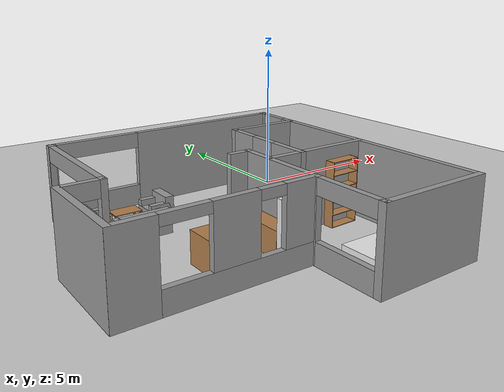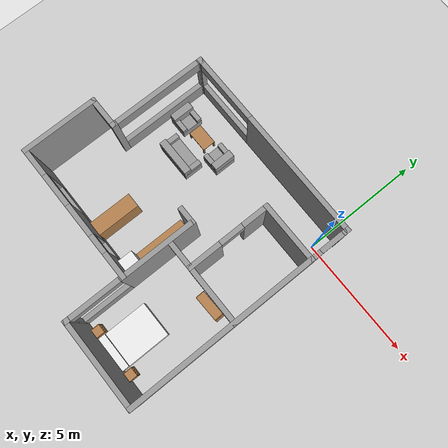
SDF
<sdf version="1.6">
 <world name="GrannyAnnie">
  <light name="sun" type="directional">
   <pose>0 0 10 0 -0 0</pose>
   <diffuse>0.8 0.8 0.8 1</diffuse>
   <specular>0.2 0.2 0.2 1</specular>
   <attenuation>
    <range>1000</range>
    <constant>0.9</constant>
    <linear>0.01</linear>
    <quadratic>0.001</quadratic>
   </attenuation>
   <direction>-0.5 0.1 -0.9</direction>
  </light>
  <model name="ground_plane">
   <static>1</static>
   <link name="link">
    <collision name="collision">
     <geometry><plane><normal>0 0 1</normal><size>100 100</size></plane></geometry>
     <surface><friction><ode><mu>100</mu><mu2>100</mu2></ode></friction></surface>
    </collision>
    <visual name="visual">
     <cast_shadows>0</cast_shadows>
     <geometry><plane><normal>0 0 1</normal><size>100 100</size></plane></geometry>
     <material>
      <script><uri>file://media/materials/scripts/gazebo.material</uri><name>Gazebo/Grey</name></script>
     </material>
    </visual>
    <velocity_decay><linear>0</linear><angular>0</angular></velocity_decay>
   </link>
  </model>
  <physics name="default_physics" default="0" type="ode">
   <max_step_size>0.01</max_step_size>
   <real_time_factor>1</real_time_factor>
   <real_time_update_rate>100</real_time_update_rate>
  </physics>
  <scene><ambient>0.4 0.4 0.4 1</ambient><background>0.7 0.7 0.7 1</background><shadows>1</shadows></scene>
  <model name="RoCKIn@Home">
   <link name="Wall_12">
    <collision name="Wall_12_Collision">
     <geometry><box><size>2.6 0.2 2.5</size></box></geometry>
     <pose>0 0 1.25 0 -0 0</pose>
    </collision>
    <visual name="Wall_12_Visual">
     <pose>0 0 1.25 0 -0 0</pose>
     <geometry><box><size>2.6 0.2 2.5</size></box></geometry>
     <material>
      <script><uri>file://media/materials/scripts/gazebo.material</uri><name>Gazebo/Grey</name></script>
     </material>
    </visual>
    <velocity_decay><linear>0</linear><angular>0</angular></velocity_decay>
    <pose>7.8 1.205 0 0 -0 1.5708</pose>
   </link>
   <link name="Wall_14">
    <pose>6.0996 2.4048 0 0 -0 3.14159</pose>
    <visual name="Wall_14_Visual_0">
     <pose>-1.20789 0 1.25 0 -0 0</pose>
     <geometry><box><size>1.18422 0.2 2.5</size></box></geometry>
     <material>
      <script><uri>file://media/materials/scripts/gazebo.material</uri><name>Gazebo/Grey</name></script>
     </material>
    </visual>
    <collision name="Wall_14_Collision_0">
     <geometry><box><size>1.18422 0.2 2.5</size></box></geometry>
     <pose>-1.20789 0 1.25 0 -0 0</pose>
    </collision>
    <visual name="Wall_14_Visual_1">
     <pose>1.09211 0 1.25 0 -0 0</pose>
     <geometry><box><size>1.41579 0.2 2.5</size></box></geometry>
     <material>
      <script><uri>file://media/materials/scripts/gazebo.material</uri><name>Gazebo/Grey</name></script>
     </material>
    </visual>
    <collision name="Wall_14_Collision_1">
     <geometry><box><size>1.41579 0.2 2.5</size></box></geometry>
     <pose>1.09211 0 1.25 0 -0 0</pose>
    </collision>
    <visual name="Wall_14_Visual_2">
     <pose>-0.115785 0 2.25 0 -0 0</pose>
     <geometry><box><size>1 0.2 0.5</size></box></geometry>
     <material>
      <script><uri>file://media/materials/scripts/gazebo.material</uri><name>Gazebo/Grey</name></script>
     </material>
    </visual>
    <collision name="Wall_14_Collision_2">
     <geometry><box><size>1 0.2 0.5</size></box></geometry>
     <pose>-0.115785 0 2.25 0 -0 0</pose>
    </collision>
    <velocity_decay><linear>0</linear><angular>0</angular></velocity_decay>
   </link>
   <link name="Wall_16">
    <collision name="Wall_16_Collision">
     <geometry><box><size>2.60492 0.2 2.5</size></box></geometry>
     <pose>0 0 1.25 0 -0 0</pose>
    </collision>
    <visual name="Wall_16_Visual">
     <pose>0 0 1.25 0 -0 0</pose>
     <geometry><box><size>2.60492 0.2 2.5</size></box></geometry>
     <material>
      <script><uri>file://media/materials/scripts/gazebo.material</uri><name>Gazebo/Grey</name></script>
     </material>
    </visual>
    <velocity_decay><linear>0</linear><angular>0</angular></velocity_decay>
    <pose>4.39903 1.20277 0 0 -0 1.5708</pose>
   </link>
   <link name="Wall_18">
    <collision name="Wall_18_Collision">
     <geometry><box><size>3.8 0.2 2.5</size></box></geometry>
     <pose>0 0 1.25 0 -0 0</pose>
    </collision>
    <visual name="Wall_18_Visual">
     <pose>0 0 1.25 0 -0 0</pose>
     <geometry><box><size>3.8 0.2 2.5</size></box></geometry>
     <material>
      <script><uri>file://media/materials/scripts/gazebo.material</uri><name>Gazebo/Grey</name></script>
     </material>
    </visual>
    <velocity_decay><linear>0</linear><angular>0</angular></velocity_decay>
    <pose>0.024876 1.80003 0 0 -0 1.5708</pose>
   </link>
   <link name="Wall_2">
    <pose>4.7266 0 0 0 -0 0</pose>
    <visual name="Wall_2_Visual_0">
     <pose>-0.649274 0 1.25 0 -0 0</pose>
     <geometry><box><size>8.30145 0.2 2.5</size></box></geometry>
     <material>
      <script><uri>file://media/materials/scripts/gazebo.material</uri><name>Gazebo/Grey</name></script>
     </material>
    </visual>
    <collision name="Wall_2_Collision_0">
     <geometry><box><size>8.30145 0.2 2.5</size></box></geometry>
     <pose>-0.649274 0 1.25 0 -0 0</pose>
    </collision>
    <visual name="Wall_2_Visual_1">
     <pose>4.65073 0 1.25 0 -0 0</pose>
     <geometry><box><size>0.298547 0.2 2.5</size></box></geometry>
     <material>
      <script><uri>file://media/materials/scripts/gazebo.material</uri><name>Gazebo/Grey</name></script>
     </material>
    </visual>
    <collision name="Wall_2_Collision_1">
     <geometry><box><size>0.298547 0.2 2.5</size></box></geometry>
     <pose>4.65073 0 1.25 0 -0 0</pose>
    </collision>
    <visual name="Wall_2_Visual_2">
     <pose>4.00145 0 2.25 0 -0 0</pose>
     <geometry><box><size>1 0.2 0.5</size></box></geometry>
     <material>
      <script><uri>file://media/materials/scripts/gazebo.material</uri><name>Gazebo/Grey</name></script>
     </material>
    </visual>
    <collision name="Wall_2_Collision_2">
     <geometry><box><size>1 0.2 0.5</size></box></geometry>
     <pose>4.00145 0 2.25 0 -0 0</pose>
    </collision>
    <velocity_decay><linear>0</linear><angular>0</angular></velocity_decay>
   </link>
   <link name="Wall_20">
    <pose>2.72456 3.60059 0 0 -0 0</pose>
    <visual name="Wall_20_Visual_0">
     <pose>-2.67396 0 1.25 0 -0 0</pose>
     <geometry><box><size>0.251208 0.2 2.5</size></box></geometry>
     <material>
      <script><uri>file://media/materials/scripts/gazebo.material</uri><name>Gazebo/Grey</name></script>
     </material>
    </visual>
    <collision name="Wall_20_Collision_0">
     <geometry><box><size>0.251208 0.2 2.5</size></box></geometry>
     <pose>-2.67396 0 1.25 0 -0 0</pose>
    </collision>
    <visual name="Wall_20_Visual_1">
     <pose>1.1766 0 1.25 0 -0 0</pose>
     <geometry><box><size>3.24591 0.2 2.5</size></box></geometry>
     <material>
      <script><uri>file://media/materials/scripts/gazebo.material</uri><name>Gazebo/Grey</name></script>
     </material>
    </visual>
    <collision name="Wall_20_Collision_1">
     <geometry><box><size>3.24591 0.2 2.5</size></box></geometry>
     <pose>1.1766 0 1.25 0 -0 0</pose>
    </collision>
    <visual name="Wall_20_Visual_2">
     <pose>-1.49735 0 2.25 0 -0 0</pose>
     <geometry><box><size>2.102 0.2 0.5</size></box></geometry>
     <material>
      <script><uri>file://media/materials/scripts/gazebo.material</uri><name>Gazebo/Grey</name></script>
     </material>
    </visual>
    <collision name="Wall_20_Collision_2">
     <geometry><box><size>2.102 0.2 0.5</size></box></geometry>
     <pose>-1.49735 0 2.25 0 -0 0</pose>
    </collision>
    <visual name="Wall_20_Visual_3">
     <pose>-1.49735 0 0.35 0 -0 0</pose>
     <geometry><box><size>2.102 0.2 0.7</size></box></geometry>
     <material>
      <script><uri>file://media/materials/scripts/gazebo.material</uri><name>Gazebo/Grey</name></script>
     </material>
    </visual>
    <collision name="Wall_20_Collision_3">
     <geometry><box><size>2.102 0.2 0.3</size></box></geometry>
     <pose>-1.49735 0 0.35 0 -0 0</pose>
    </collision>
    <velocity_decay><linear>0</linear><angular>0</angular></velocity_decay>
   </link>
   <link name="Wall_22">
    <pose>4.39856 3.00206 0 0 -0 1.5708</pose>
    <visual name="Wall_22_Visual_0">
     <pose>-0.601085 0 1.25 0 -0 0</pose>
     <geometry><box><size>0.194709 0.2 2.5</size></box></geometry>
     <material>
      <script><uri>file://media/materials/scripts/gazebo.material</uri><name>Gazebo/Grey</name></script>
     </material>
    </visual>
    <collision name="Wall_22_Collision_0">
     <geometry><box><size>0.194709 0.2 2.5</size></box></geometry>
     <pose>-0.601085 0 1.25 0 -0 0</pose>
    </collision>
    <visual name="Wall_22_Visual_1">
     <pose>0.597355 0 1.25 0 -0 0</pose>
     <geometry><box><size>0.202171 0.2 2.5</size></box></geometry>
     <material>
      <script><uri>file://media/materials/scripts/gazebo.material</uri><name>Gazebo/Grey</name></script>
     </material>
    </visual>
    <collision name="Wall_22_Collision_1">
     <geometry><box><size>0.202171 0.2 2.5</size></box></geometry>
     <pose>0.597355 0 1.25 0 -0 0</pose>
    </collision>
    <visual name="Wall_22_Visual_2">
     <pose>-0.003731 0 2.25 0 -0 0</pose>
     <geometry><box><size>1 0.2 0.5</size></box></geometry>
     <material>
      <script><uri>file://media/materials/scripts/gazebo.material</uri><name>Gazebo/Grey</name></script>
     </material>
    </visual>
    <collision name="Wall_22_Collision_2">
     <geometry><box><size>1 0.2 0.5</size></box></geometry>
     <pose>-0.003731 0 2.25 0 -0 0</pose>
    </collision>
    <velocity_decay><linear>0</linear><angular>0</angular></velocity_decay>
   </link>
   <link name="Wall_24">
    <pose>7.42703 8.20242 0 0 -0 3.14159</pose>
    <visual name="Wall_24_Visual_0">
     <pose>-1.97924 0 1.25 0 -0 0</pose>
     <geometry><box><size>0.241529 0.2 2.5</size></box></geometry>
     <material>
      <script><uri>file://media/materials/scripts/gazebo.material</uri><name>Gazebo/Grey</name></script>
     </material>
    </visual>
    <collision name="Wall_24_Collision_0">
     <geometry><box><size>0.241529 0.2 2.5</size></box></geometry>
     <pose>-1.97924 0 1.25 0 -0 0</pose>
    </collision>
    <visual name="Wall_24_Visual_1">
     <pose>1.97395 0 1.25 0 -0 0</pose>
     <geometry><box><size>0.252091 0.2 2.5</size></box></geometry>
     <material>
      <script><uri>file://media/materials/scripts/gazebo.material</uri><name>Gazebo/Grey</name></script>
     </material>
    </visual>
    <collision name="Wall_24_Collision_1">
     <geometry><box><size>0.252091 0.2 2.5</size></box></geometry>
     <pose>1.97395 0 1.25 0 -0 0</pose>
    </collision>
    <visual name="Wall_24_Visual_2">
     <pose>-0.005281 0 2.25 0 -0 0</pose>
     <geometry><box><size>3.70638 0.2 0.5</size></box></geometry>
     <material>
      <script><uri>file://media/materials/scripts/gazebo.material</uri><name>Gazebo/Grey</name></script>
     </material>
    </visual>
    <collision name="Wall_24_Collision_2">
     <geometry><box><size>3.70638 0.2 0.5</size></box></geometry>
     <pose>-0.005281 0 2.25 0 -0 0</pose>
    </collision>
    <visual name="Wall_24_Visual_3">
     <pose>-0.005281 0 0.35 0 -0 0</pose>
     <geometry><box><size>3.70638 0.2 0.7</size></box></geometry>
     <material>
      <script><uri>file://media/materials/scripts/gazebo.material</uri><name>Gazebo/Grey</name></script>
     </material>
    </visual>
    <collision name="Wall_24_Collision_3">
     <geometry><box><size>3.70638 0.2 0.7</size></box></geometry>
     <pose>-0.005281 0 0.35 0 -0 0</pose>
    </collision>
    <velocity_decay><linear>0</linear><angular>0</angular></velocity_decay>
   </link>
   <link name="Wall_28">
    <collision name="Wall_28_Collision">
     <geometry><box><size>3.2 0.2 2.5</size></box></geometry>
     <pose>0 0 1.25 0 -0 0</pose>
    </collision>
    <visual name="Wall_28_Visual">
     <pose>0 0 1.25 0 -0 0</pose>
     <geometry><box><size>3.2 0.2 2.5</size></box></geometry>
     <material>
      <script><uri>file://media/materials/scripts/gazebo.material</uri><name>Gazebo/Grey</name></script>
     </material>
    </visual>
    <velocity_decay><linear>0</linear><angular>0</angular></velocity_decay>
    <pose>3.92571 9.40229 0 0 -0 3.14159</pose>
   </link>
   <link name="Wall_30">
    <pose>2.42541 6.50159 0 0 0 -1.5708</pose>
    <visual name="Wall_30_Visual_0">
     <pose>-2.363 0 1.25 0 -0 0</pose>
     <geometry><box><size>1.27269 0.2 2.5</size></box></geometry>
     <material>
      <script><uri>file://media/materials/scripts/gazebo.material</uri><name>Gazebo/Grey</name></script>
     </material>
    </visual>
    <collision name="Wall_30_Collision_0">
     <geometry><box><size>1.27269 0.2 2.5</size></box></geometry>
     <pose>-2.363 0 1.25 0 -0 0</pose>
    </collision>
    <visual name="Wall_30_Visual_1">
     <pose>0.636346 0 0.35 0 -0 0</pose>
     <geometry><box><size>4.726 0.2 0.7</size></box></geometry>
     <material>
      <script><uri>file://media/materials/scripts/gazebo.material</uri><name>Gazebo/Grey</name></script>
     </material>
    </visual>
    <collision name="Wall_30_Collision_1">
     <geometry><box><size>4.726 0.2 0.7</size></box></geometry>
     <pose>0.636346 0 0.35 0 -0 0</pose>
    </collision>
    <visual name="Wall_30_Visual_2">
     <pose>0.36359 0 1.6 0 -0 0</pose>
     <geometry><box><size>1.38049 0.2 1.8</size></box></geometry>
     <material>
      <script><uri>file://media/materials/scripts/gazebo.material</uri><name>Gazebo/Grey</name></script>
     </material>
    </visual>
    <collision name="Wall_30_Collision_2">
     <geometry><box><size>1.38049 0.2 1.8</size></box></geometry>
     <pose>0.36359 0 1.6 0 -0 0</pose>
    </collision>
    <visual name="Wall_30_Visual_3">
     <pose>2.42659 0 1.6 0 -0 0</pose>
     <geometry><box><size>1.14551 0.2 1.8</size></box></geometry>
     <material>
      <script><uri>file://media/materials/scripts/gazebo.material</uri><name>Gazebo/Grey</name></script>
     </material>
    </visual>
    <collision name="Wall_30_Collision_3">
     <geometry><box><size>1.14551 0.2 1.8</size></box></geometry>
     <pose>2.42659 0 1.6 0 -0 0</pose>
    </collision>
    <visual name="Wall_30_Visual_4">
     <pose>-1.02665 0 2.35 0 -0 0</pose>
     <geometry><box><size>1.4 0.2 0.3</size></box></geometry>
     <material>
      <script><uri>file://media/materials/scripts/gazebo.material</uri><name>Gazebo/Grey</name></script>
     </material>
    </visual>
    <collision name="Wall_30_Collision_4">
     <geometry><box><size>1.4 0.2 0.3</size></box></geometry>
     <pose>-1.02665 0 2.35 0 -0 0</pose>
    </collision>
    <visual name="Wall_30_Visual_5">
     <pose>1.45383 0 2.35 0 -0 0</pose>
     <geometry><box><size>0.8 0.2 0.3</size></box></geometry>
     <material>
      <script><uri>file://media/materials/scripts/gazebo.material</uri><name>Gazebo/Grey</name></script>
     </material>
    </visual>
    <collision name="Wall_30_Collision_5">
     <geometry><box><size>0.8 0.2 0.3</size></box></geometry>
     <pose>1.45383 0 2.35 0 -0 0</pose>
    </collision>
    <velocity_decay><linear>0</linear><angular>0</angular></velocity_decay>
   </link>
   <link name="Wall_32">
    <pose>5.42654 8.80216 0 0 0 -1.5708</pose>
    <visual name="Wall_32_Visual_0">
     <pose>-0.599775 0 1.25 0 -0 0</pose>
     <geometry><box><size>0.199231 0.2 2.5</size></box></geometry>
     <material>
      <script><uri>file://media/materials/scripts/gazebo.material</uri><name>Gazebo/Grey</name></script>
     </material>
    </visual>
    <collision name="Wall_32_Collision_0">
     <geometry><box><size>0.199231 0.2 2.5</size></box></geometry>
     <pose>-0.599775 0 1.25 0 -0 0</pose>
    </collision>
    <visual name="Wall_32_Visual_1">
     <pose>0.599615 0 1.25 0 -0 0</pose>
     <geometry><box><size>0.199549 0.2 2.5</size></box></geometry>
     <material>
      <script><uri>file://media/materials/scripts/gazebo.material</uri><name>Gazebo/Grey</name></script>
     </material>
    </visual>
    <collision name="Wall_32_Collision_1">
     <geometry><box><size>0.199549 0.2 2.5</size></box></geometry>
     <pose>0.599615 0 1.25 0 -0 0</pose>
    </collision>
    <visual name="Wall_32_Visual_2">
     <pose>-0.000159 0 2.25 0 -0 0</pose>
     <geometry><box><size>1 0.2 0.5</size></box></geometry>
     <material>
      <script><uri>file://media/materials/scripts/gazebo.material</uri><name>Gazebo/Grey</name></script>
     </material>
    </visual>
    <collision name="Wall_32_Collision_2">
     <geometry><box><size>1 0.2 0.5</size></box></geometry>
     <pose>-0.000159 0 2.25 0 -0 0</pose>
    </collision>
    <velocity_decay><linear>0</linear><angular>0</angular></velocity_decay>
   </link>
   <link name="Wall_35">
    <collision name="Wall_35_Collision">
     <geometry><box><size>0.8 0.2 2.5</size></box></geometry>
     <pose>0 0 1.25 0 -0 0</pose>
    </collision>
    <visual name="Wall_35_Visual">
     <pose>0 0 1.25 0 -0 0</pose>
     <geometry><box><size>0.8 0.2 2.5</size></box></geometry>
     <material>
      <script><uri>file://media/materials/scripts/gazebo.material</uri><name>Gazebo/Grey</name></script>
     </material>
    </visual>
    <velocity_decay><linear>0</linear><angular>0</angular></velocity_decay>
    <pose>5.42451 3.90082 0 0 -0 1.5708</pose>
   </link>
   <link name="Wall_8">
    <pose>9.42875 4.1026 0 0 -0 1.5708</pose>
    <visual name="Wall_8_Visual_0">
     <pose>-1.48935 0 1.25 0 -0 0</pose>
     <geometry><box><size>5.42201 0.2 2.5</size></box></geometry>
     <material>
      <script><uri>file://media/materials/scripts/gazebo.material</uri><name>Gazebo/Grey</name></script>
     </material>
    </visual>
    <collision name="Wall_8_Collision_0">
     <geometry><box><size>5.42201 0.2 2.5</size></box></geometry>
     <pose>-1.48935 0 1.25 0 -0 0</pose>
    </collision>
    <visual name="Wall_8_Visual_1">
     <pose>4.07465 0 1.25 0 -0 0</pose>
     <geometry><box><size>0.251416 0.2 2.5</size></box></geometry>
     <material>
      <script><uri>file://media/materials/scripts/gazebo.material</uri><name>Gazebo/Grey</name></script>
     </material>
    </visual>
    <collision name="Wall_8_Collision_1">
     <geometry><box><size>0.251416 0.2 2.5</size></box></geometry>
     <pose>4.07465 0 1.25 0 -0 0</pose>
    </collision>
    <visual name="Wall_8_Visual_2">
     <pose>2.5853 0 2.25 0 -0 0</pose>
     <geometry><box><size>2.72728 0.2 0.5</size></box></geometry>
     <material>
      <script><uri>file://media/materials/scripts/gazebo.material</uri><name>Gazebo/Grey</name></script>
     </material>
    </visual>
    <collision name="Wall_8_Collision_2">
     <geometry><box><size>2.72728 0.2 0.5</size></box></geometry>
     <pose>2.5853 0 2.25 0 -0 0</pose>
    </collision>
    <visual name="Wall_8_Visual_3">
     <pose>2.5853 0 0.35 0 -0 0</pose>
     <geometry><box><size>2.72728 0.2 0.7</size></box></geometry>
     <material>
      <script><uri>file://media/materials/scripts/gazebo.material</uri><name>Gazebo/Grey</name></script>
     </material>
    </visual>
    <collision name="Wall_8_Collision_3">
     <geometry><box><size>2.72728 0.2 0.7</size></box></geometry>
     <pose>2.5853 0 0.35 0 -0 0</pose>
    </collision>
    <velocity_decay><linear>0</linear><angular>0</angular></velocity_decay>
   </link>
   <static>1</static>
   <pose>0.4 -8.6 0 0 -0 1.57</pose>
  </model>
  <model name="mesa_salon">
   <link name="mesa_link">
    <inertial>
     <pose>0 0 0.3075 0 -0 0</pose>
     <mass>4</mass>
     <inertia>
      <ixx>0.666275</ixx>
      <ixy>1.92593e-34</ixy>
      <ixz>1.70697e-17</ixz>
      <iyy>0.899025</iyy>
      <iyz>4.26742e-18</iyz>
      <izz>0.97285</izz>
     </inertia>
    </inertial>
    <collision name="mesa_link_collision">
     <pose>0 0 0.415 0 -0 0</pose>
     <geometry><box><size>0.9 0.55 0.03</size></box></geometry>
     <surface><friction><ode><mu>100</mu><mu2>100</mu2></ode></friction></surface>
    </collision>
    <collision name="mesa_link_collision_pata_1_link">
     <pose>0.42 0.245 0.2 0 -0 0</pose>
     <geometry><box><size>0.06 0.06 0.4</size></box></geometry>
     <surface><friction><ode><mu>100</mu><mu2>100</mu2></ode></friction></surface>
     <surface><friction><ode><mu>100</mu><mu2>100</mu2></ode></friction></surface>
    </collision>
    <collision name="mesa_link_collision_pata_2_link">
     <pose>0.42 -0.245 0.2 0 -0 0</pose>
     <geometry><box><size>0.06 0.06 0.4</size></box></geometry>
     <surface><friction><ode><mu>100</mu><mu2>100</mu2></ode></friction></surface>
     <surface><friction><ode><mu>100</mu><mu2>100</mu2></ode></friction></surface>
    </collision>
    <collision name="mesa_link_collision_pata_3_link">
     <pose>-0.42 -0.245 0.2 0 -0 0</pose>
     <geometry><box><size>0.06 0.06 0.4</size></box></geometry>
     <surface><friction><ode><mu>100</mu><mu2>100</mu2></ode></friction></surface>
     <surface><friction><ode><mu>100</mu><mu2>100</mu2></ode></friction></surface>
    </collision>
    <collision name="mesa_link_collision_pata_4_link">
     <pose>-0.42 0.245 0.2 0 -0 0</pose>
     <geometry><box><size>0.06 0.06 0.4</size></box></geometry>
     <surface><friction><ode><mu>100</mu><mu2>100</mu2></ode></friction></surface>
     <surface><friction><ode><mu>100</mu><mu2>100</mu2></ode></friction></surface>
    </collision>
    <visual name="mesa_link_visual">
     <pose>0 0 0.415 0 -0 0</pose>
     <geometry><box><size>0.9 0.55 0.03</size></box></geometry>
     <material><script><name>Gazebo/Wood</name><uri>__default__</uri></script></material>
    </visual>
    <visual name="mesa_link_visual_pata_1_link">
     <pose>0.42 0.245 0.2 0 -0 0</pose>
     <geometry><box><size>0.06 0.06 0.4</size></box></geometry>
     <material><script><name>Gazebo/Wood</name><uri>__default__</uri></script></material>
    </visual>
    <visual name="mesa_link_visual_pata_2_link">
     <pose>0.42 -0.245 0.2 0 -0 0</pose>
     <geometry><box><size>0.06 0.06 0.4</size></box></geometry>
     <material><script><name>Gazebo/Wood</name><uri>__default__</uri></script></material>
    </visual>
    <visual name="mesa_link_visual_pata_3_link">
     <pose>-0.42 -0.245 0.2 0 -0 0</pose>
     <geometry><box><size>0.06 0.06 0.4</size></box></geometry>
     <material><script><name>Gazebo/Wood</name><uri>__default__</uri></script></material>
    </visual>
    <visual name="mesa_link_visual_pata_4_link">
     <pose>-0.42 0.245 0.2 0 -0 0</pose>
     <geometry><box><size>0.06 0.06 0.4</size></box></geometry>
     <material><script><name>Gazebo/Wood</name><uri>__default__</uri></script></material>
    </visual>
    <velocity_decay><linear>0</linear><angular>0</angular></velocity_decay>
    <velocity_decay><linear>0</linear><angular>0</angular></velocity_decay>
    <velocity_decay><linear>0</linear><angular>0</angular></velocity_decay>
    <velocity_decay><linear>0</linear><angular>0</angular></velocity_decay>
    <velocity_decay><linear>0</linear><angular>0</angular></velocity_decay>
    <self_collide>1</self_collide>
   </link>
   <pose>-6.08666 -0.599214 -0.000904 -4e-06 6.6e-05 0.002838</pose>
   <static>0</static>
  </model>
  <model name="sofa_x2_salon">
   <link name="sofa_link">
    <inertial>
     <pose>0 0.011539 0.257692 0 -0 0</pose>
     <mass>13</mass>
     <inertia>
      <ixx>0.7625</ixx>
      <ixy>0</ixy>
      <ixz>0</ixz>
      <iyy>1.67673</iyy>
      <iyz>-0.0463462</iyz>
      <izz>1.44577</izz>
     </inertia>
    </inertial>
    <collision name="sofa_link_collision">
     <pose>0 0 0.175 0 -0 0</pose>
     <geometry><box><size>1.6 0.8 0.35</size></box></geometry>
     <surface><friction><ode><mu>100</mu><mu2>100</mu2></ode></friction></surface>
    </collision>
    <collision name="sofa_link_collision_brazo_1_link">
     <pose>0.7 -0.05 0.45 0 -0 0</pose>
     <geometry><box><size>0.2 0.7 0.2</size></box></geometry>
     <surface><friction><ode><mu>100</mu><mu2>100</mu2></ode></friction></surface>
     <surface><friction><ode><mu>100</mu><mu2>100</mu2></ode></friction></surface>
    </collision>
    <collision name="sofa_link_collision_brazo_2_link">
     <pose>-0.7 -0.05 0.45 0 -0 0</pose>
     <geometry><box><size>0.2 0.7 0.2</size></box></geometry>
     <surface><friction><ode><mu>100</mu><mu2>100</mu2></ode></friction></surface>
     <surface><friction><ode><mu>100</mu><mu2>100</mu2></ode></friction></surface>
    </collision>
    <collision name="sofa_link_collision_respaldo_link">
     <pose>0 0.25 0.55 0 -0 0</pose>
     <geometry><box><size>1.6 0.3 0.4</size></box></geometry>
     <surface><friction><ode><mu>100</mu><mu2>100</mu2></ode></friction></surface>
     <surface><friction><ode><mu>100</mu><mu2>100</mu2></ode></friction></surface>
    </collision>
    <visual name="sofa_link_visual">
     <pose>0 0 0.175 0 -0 0</pose>
     <geometry><box><size>1.6 0.8 0.35</size></box></geometry>
     <material><script><name>Gazebo/Grey</name><uri>__default__</uri></script></material>
    </visual>
    <visual name="sofa_link_visual_brazo_1_link">
     <pose>0.7 -0.05 0.45 0 -0 0</pose>
     <geometry><box><size>0.2 0.7 0.2</size></box></geometry>
     <material><script><name>Gazebo/Grey</name><uri>__default__</uri></script></material>
    </visual>
    <visual name="sofa_link_visual_brazo_2_link">
     <pose>-0.7 -0.05 0.45 0 -0 0</pose>
     <geometry><box><size>0.2 0.7 0.2</size></box></geometry>
     <material><script><name>Gazebo/Grey</name><uri>__default__</uri></script></material>
    </visual>
    <visual name="sofa_link_visual_respaldo_link">
     <pose>0 0.25 0.55 0 -0 0</pose>
     <geometry><box><size>1.6 0.3 0.4</size></box></geometry>
     <material><script><name>Gazebo/Grey</name><uri>__default__</uri></script></material>
    </visual>
    <velocity_decay><linear>0</linear><angular>0</angular></velocity_decay>
    <velocity_decay><linear>0</linear><angular>0</angular></velocity_decay>
    <velocity_decay><linear>0</linear><angular>0</angular></velocity_decay>
    <velocity_decay><linear>0</linear><angular>0</angular></velocity_decay>
    <self_collide>1</self_collide>
   </link>
   <pose>-6.0423 -1.69908 0 0 -0 3.13995</pose>
   <static>0</static>
  </model>
  <model name="sofa_x1_1_salon">
   <link name="sofa_link">
    <inertial>
     <pose>0 0.01875 0.309375 0 -0 0</pose>
     <mass>8</mass>
     <inertia>
      <ixx>0.705859</ixx>
      <ixy>0</ixy>
      <ixz>0</ixz>
      <iyy>0.886172</iyy>
      <iyz>-0.0385938</iyz>
      <izz>0.709687</izz>
     </inertia>
    </inertial>
    <collision name="sofa_link_collision">
     <pose>0 0 0.175 0 -0 0</pose>
     <geometry><box><size>0.9 0.8 0.35</size></box></geometry>
     <surface><friction><ode><mu>100</mu><mu2>100</mu2></ode></friction></surface>
    </collision>
    <collision name="sofa_link_collision_brazo_1_link">
     <pose>0.35 -0.05 0.45 0 -0 0</pose>
     <geometry><box><size>0.2 0.7 0.2</size></box></geometry>
     <surface><friction><ode><mu>100</mu><mu2>100</mu2></ode></friction></surface>
     <surface><friction><ode><mu>100</mu><mu2>100</mu2></ode></friction></surface>
    </collision>
    <collision name="sofa_link_collision_brazo_2_link">
     <pose>-0.35 -0.05 0.45 0 -0 0</pose>
     <geometry><box><size>0.2 0.7 0.2</size></box></geometry>
     <surface><friction><ode><mu>100</mu><mu2>100</mu2></ode></friction></surface>
     <surface><friction><ode><mu>100</mu><mu2>100</mu2></ode></friction></surface>
    </collision>
    <collision name="sofa_link_collision_respaldo_link">
     <pose>0 0.25 0.55 0 -0 0</pose>
     <geometry><box><size>0.9 0.3 0.4</size></box></geometry>
     <surface><friction><ode><mu>100</mu><mu2>100</mu2></ode></friction></surface>
     <surface><friction><ode><mu>100</mu><mu2>100</mu2></ode></friction></surface>
    </collision>
    <visual name="sofa_link_visual">
     <pose>0 0 0.175 0 -0 0</pose>
     <geometry><box><size>0.9 0.8 0.35</size></box></geometry>
     <material><script><name>Gazebo/Grey</name><uri>__default__</uri></script></material>
    </visual>
    <visual name="sofa_link_visual_brazo_1_link">
     <pose>0.35 -0.05 0.45 0 -0 0</pose>
     <geometry><box><size>0.2 0.7 0.2</size></box></geometry>
     <material><script><name>Gazebo/Grey</name><uri>__default__</uri></script></material>
    </visual>
    <visual name="sofa_link_visual_brazo_2_link">
     <pose>-0.35 -0.05 0.45 0 -0 0</pose>
     <geometry><box><size>0.2 0.7 0.2</size></box></geometry>
     <material><script><name>Gazebo/Grey</name><uri>__default__</uri></script></material>
    </visual>
    <visual name="sofa_link_visual_respaldo_link">
     <pose>0 0.25 0.55 0 -0 0</pose>
     <geometry><box><size>0.9 0.3 0.4</size></box></geometry>
     <material><script><name>Gazebo/Grey</name><uri>__default__</uri></script></material>
    </visual>
    <velocity_decay><linear>0</linear><angular>0</angular></velocity_decay>
    <velocity_decay><linear>0</linear><angular>0</angular></velocity_decay>
    <velocity_decay><linear>0</linear><angular>0</angular></velocity_decay>
    <velocity_decay><linear>0</linear><angular>0</angular></velocity_decay>
    <self_collide>1</self_collide>
   </link>
   <pose>-5.01116 -0.604657 -0 -0 -0 -1.57</pose>
   <static>0</static>
  </model>
  <model name="sofa_x1_2_salon">
   <link name="sofa_link">
    <inertial>
     <pose>0 0.01875 0.309375 0 -0 0</pose>
     <mass>8</mass>
     <inertia>
      <ixx>0.705859</ixx>
      <ixy>0</ixy>
      <ixz>0</ixz>
      <iyy>0.886172</iyy>
      <iyz>-0.0385938</iyz>
      <izz>0.709687</izz>
     </inertia>
    </inertial>
    <collision name="sofa_link_collision">
     <pose>0 0 0.175 0 -0 0</pose>
     <geometry><box><size>0.9 0.8 0.35</size></box></geometry>
     <surface><friction><ode><mu>100</mu><mu2>100</mu2></ode></friction></surface>
    </collision>
    <collision name="sofa_link_collision_brazo_1_link">
     <pose>0.35 -0.05 0.45 0 -0 0</pose>
     <geometry><box><size>0.2 0.7 0.2</size></box></geometry>
     <surface><friction><ode><mu>100</mu><mu2>100</mu2></ode></friction></surface>
     <surface><friction><ode><mu>100</mu><mu2>100</mu2></ode></friction></surface>
    </collision>
    <collision name="sofa_link_collision_brazo_2_link">
     <pose>-0.35 -0.05 0.45 0 -0 0</pose>
     <geometry><box><size>0.2 0.7 0.2</size></box></geometry>
     <surface><friction><ode><mu>100</mu><mu2>100</mu2></ode></friction></surface>
     <surface><friction><ode><mu>100</mu><mu2>100</mu2></ode></friction></surface>
    </collision>
    <collision name="sofa_link_collision_respaldo_link">
     <pose>0 0.25 0.55 0 -0 0</pose>
     <geometry><box><size>0.9 0.3 0.4</size></box></geometry>
     <surface><friction><ode><mu>100</mu><mu2>100</mu2></ode></friction></surface>
     <surface><friction><ode><mu>100</mu><mu2>100</mu2></ode></friction></surface>
    </collision>
    <visual name="sofa_link_visual">
     <pose>0 0 0.175 0 -0 0</pose>
     <geometry><box><size>0.9 0.8 0.35</size></box></geometry>
     <material><script><name>Gazebo/Grey</name><uri>__default__</uri></script></material>
    </visual>
    <visual name="sofa_link_visual_brazo_1_link">
     <pose>0.35 -0.05 0.45 0 -0 0</pose>
     <geometry><box><size>0.2 0.7 0.2</size></box></geometry>
     <material><script><name>Gazebo/Grey</name><uri>__default__</uri></script></material>
    </visual>
    <visual name="sofa_link_visual_brazo_2_link">
     <pose>-0.35 -0.05 0.45 0 -0 0</pose>
     <geometry><box><size>0.2 0.7 0.2</size></box></geometry>
     <material><script><name>Gazebo/Grey</name><uri>__default__</uri></script></material>
    </visual>
    <visual name="sofa_link_visual_respaldo_link">
     <pose>0 0.25 0.55 0 -0 0</pose>
     <geometry><box><size>0.9 0.3 0.4</size></box></geometry>
     <material><script><name>Gazebo/Grey</name><uri>__default__</uri></script></material>
    </visual>
    <velocity_decay><linear>0</linear><angular>0</angular></velocity_decay>
    <velocity_decay><linear>0</linear><angular>0</angular></velocity_decay>
    <velocity_decay><linear>0</linear><angular>0</angular></velocity_decay>
    <velocity_decay><linear>0</linear><angular>0</angular></velocity_decay>
    <self_collide>1</self_collide>
   </link>
   <pose>-7.1 -0.6 -0 0 -0 1.57</pose>
   <static>0</static>
  </model>
  <model name="encimera">
   <link name="encimera_link">
    <inertial>
     <pose>0 0 0.425 0 -0 0</pose>
     <mass>50</mass>
     <inertia><ixx>5</ixx><ixy>0</ixy><ixz>0</ixz><iyy>5</iyy><iyz>0</iyz><izz>5</izz></inertia>
    </inertial>
    <collision name="encimera_link_collision">
     <pose>0 0 0.425 0 -0 0</pose>
     <geometry><box><size>2.1 0.6 0.85</size></box></geometry>
     <surface><friction><ode><mu>100</mu><mu2>100</mu2></ode></friction></surface>
    </collision>
    <visual name="encimera_link_visual">
     <pose>0 0 0.425 0 -0 0</pose>
     <geometry><box><size>2.1 0.6 0.85</size></box></geometry>
     <material><script><name>Gazebo/Wood</name><uri>__default__</uri></script></material>
    </visual>
    <velocity_decay><linear>0</linear><angular>0</angular></velocity_decay>
    <self_collide>1</self_collide>
   </link>
   <pose>-3.59999 -4.38991 7e-06 -5.3e-05 -1.8e-05 1.56999</pose>
   <static>0</static>
  </model>
  <model name="barra">
   <link name="barra_link">
    <inertial>
     <pose>0 0 0.5 0 -0 0</pose>
     <mass>50</mass>
     <inertia><ixx>5</ixx><ixy>0</ixy><ixz>0</ixz><iyy>5</iyy><iyz>0</iyz><izz>5</izz></inertia>
    </inertial>
    <collision name="barra_link_collision">
     <pose>0 0 0.5 0 -0 0</pose>
     <geometry><box><size>1.8 0.6 1</size></box></geometry>
     <surface><friction><ode><mu>100</mu><mu2>100</mu2></ode></friction></surface>
    </collision>
    <visual name="barra_link_visual">
     <pose>0 0 0.5 0 -0 0</pose>
     <geometry><box><size>1.8 0.6 1</size></box></geometry>
     <material><script><name>Gazebo/Wood</name><uri>__default__</uri></script></material>
    </visual>
    <velocity_decay><linear>0</linear><angular>0</angular></velocity_decay>
    <self_collide>1</self_collide>
   </link>
   <pose>-5.60014 -5.16021 -0.00063 0.000183 0.000632 1.57007</pose>
   <static>0</static>
  </model>
  <model name="frigo">
   <link name="frigo_link">
    <inertial>
     <pose>0 0 0.9 0 -0 0</pose>
     <mass>50</mass>
     <inertia><ixx>5</ixx><ixy>0</ixy><ixz>0</ixz><iyy>5</iyy><iyz>0</iyz><izz>5</izz></inertia>
    </inertial>
    <collision name="frigo_link_collision">
     <pose>0 0 0.9 0 -0 0</pose>
     <geometry><box><size>0.6 0.6 1.8</size></box></geometry>
     <surface><friction><ode><mu>100</mu><mu2>100</mu2></ode></friction></surface>
    </collision>
    <visual name="frigo_link_visual">
     <pose>0 0 0.9 0 -0 0</pose>
     <geometry><box><size>0.6 0.6 1.8</size></box></geometry>
     <material><script><name>Gazebo/White</name><uri>__default__</uri></script></material>
    </visual>
    <velocity_decay><linear>0</linear><angular>0</angular></velocity_decay>
    <self_collide>1</self_collide>
   </link>
   <pose>-3.59988 -5.75061 -8.3e-05 -0.000181 9.4e-05 -0.001412</pose>
   <static>0</static>
  </model>
  <model name="estanteria_2">
   <link name="estanteria_link">
    <inertial>
     <pose>0 0 1.046 0 -0 0</pose>
     <mass>10</mass>
     <inertia><ixx>3.12544</ixx><ixy>0</ixy><ixz>0</ixz><iyy>4.16584</iyy><iyz>0</iyz><izz>1.1204</izz></inertia>
    </inertial>
    <collision name="estanteria_link_collision">
     <pose>0 0 0.01 0 -0 0</pose>
     <geometry><box><size>1 0.35 0.02</size></box></geometry>
     <surface><friction><ode><mu>100</mu><mu2>100</mu2></ode></friction></surface>
    </collision>
    <collision name="estanteria_link_collision_basal_1_link">
     <pose>0 0 0.41 0 -0 0</pose>
     <geometry><box><size>1 0.35 0.02</size></box></geometry>
     <surface><friction><ode><mu>100</mu><mu2>100</mu2></ode></friction></surface>
     <surface><friction><ode><mu>100</mu><mu2>100</mu2></ode></friction></surface>
    </collision>
    <collision name="estanteria_link_collision_basal_2_link">
     <pose>0 0 0.83 0 -0 0</pose>
     <geometry><box><size>1 0.35 0.02</size></box></geometry>
     <surface><friction><ode><mu>100</mu><mu2>100</mu2></ode></friction></surface>
     <surface><friction><ode><mu>100</mu><mu2>100</mu2></ode></friction></surface>
    </collision>
    <collision name="estanteria_link_collision_basal_3_link">
     <pose>0 0 1.25 0 -0 0</pose>
     <geometry><box><size>1 0.35 0.02</size></box></geometry>
     <surface><friction><ode><mu>100</mu><mu2>100</mu2></ode></friction></surface>
     <surface><friction><ode><mu>100</mu><mu2>100</mu2></ode></friction></surface>
    </collision>
    <collision name="estanteria_link_collision_basal_4_link">
     <pose>0 0 1.67 0 -0 0</pose>
     <geometry><box><size>1 0.35 0.02</size></box></geometry>
     <surface><friction><ode><mu>100</mu><mu2>100</mu2></ode></friction></surface>
     <surface><friction><ode><mu>100</mu><mu2>100</mu2></ode></friction></surface>
    </collision>
    <collision name="estanteria_link_collision_basal_5_link">
     <pose>0 0 2.09 0 -0 0</pose>
     <geometry><box><size>1 0.35 0.02</size></box></geometry>
     <surface><friction><ode><mu>100</mu><mu2>100</mu2></ode></friction></surface>
     <surface><friction><ode><mu>100</mu><mu2>100</mu2></ode></friction></surface>
    </collision>
    <collision name="estanteria_link_collision_lateral_1_link">
     <pose>0.51 0 1.05 0 -0 0</pose>
     <geometry><box><size>0.02 0.35 2.1</size></box></geometry>
     <surface><friction><ode><mu>100</mu><mu2>100</mu2></ode></friction></surface>
     <surface><friction><ode><mu>100</mu><mu2>100</mu2></ode></friction></surface>
    </collision>
    <collision name="estanteria_link_collision_lateral_2_link">
     <pose>-0.51 0 1.05 0 -0 0</pose>
     <geometry><box><size>0.02 0.35 2.1</size></box></geometry>
     <surface><friction><ode><mu>100</mu><mu2>100</mu2></ode></friction></surface>
     <surface><friction><ode><mu>100</mu><mu2>100</mu2></ode></friction></surface>
    </collision>
    <visual name="estanteria_link_visual">
     <pose>0 0 0.01 0 -0 0</pose>
     <geometry><box><size>1 0.35 0.02</size></box></geometry>
     <material><script><name>Gazebo/Wood</name><uri>__default__</uri></script></material>
    </visual>
    <visual name="estanteria_link_visual_basal_1_link">
     <pose>0 0 0.41 0 -0 0</pose>
     <geometry><box><size>1 0.35 0.02</size></box></geometry>
     <material><script><name>Gazebo/Wood</name><uri>__default__</uri></script></material>
    </visual>
    <visual name="estanteria_link_visual_basal_2_link">
     <pose>0 0 0.83 0 -0 0</pose>
     <geometry><box><size>1 0.35 0.02</size></box></geometry>
     <material><script><name>Gazebo/Wood</name><uri>__default__</uri></script></material>
    </visual>
    <visual name="estanteria_link_visual_basal_3_link">
     <pose>0 0 1.25 0 -0 0</pose>
     <geometry><box><size>1 0.35 0.02</size></box></geometry>
     <material><script><name>Gazebo/Wood</name><uri>__default__</uri></script></material>
    </visual>
    <visual name="estanteria_link_visual_basal_4_link">
     <pose>0 0 1.67 0 -0 0</pose>
     <geometry><box><size>1 0.35 0.02</size></box></geometry>
     <material><script><name>Gazebo/Wood</name><uri>__default__</uri></script></material>
    </visual>
    <visual name="estanteria_link_visual_basal_5_link">
     <pose>0 0 2.09 0 -0 0</pose>
     <geometry><box><size>1 0.35 0.02</size></box></geometry>
     <material><script><name>Gazebo/Wood</name><uri>__default__</uri></script></material>
    </visual>
    <visual name="estanteria_link_visual_lateral_1_link">
     <pose>0.51 0 1.05 0 -0 0</pose>
     <geometry><box><size>0.02 0.35 2.1</size></box></geometry>
     <material><script><name>Gazebo/Wood</name><uri>__default__</uri></script></material>
    </visual>
    <visual name="estanteria_link_visual_lateral_2_link">
     <pose>-0.51 0 1.05 0 -0 0</pose>
     <geometry><box><size>0.02 0.35 2.1</size></box></geometry>
     <material><script><name>Gazebo/Wood</name><uri>__default__</uri></script></material>
    </visual>
    <velocity_decay><linear>0</linear><angular>0</angular></velocity_decay>
    <velocity_decay><linear>0</linear><angular>0</angular></velocity_decay>
    <velocity_decay><linear>0</linear><angular>0</angular></velocity_decay>
    <velocity_decay><linear>0</linear><angular>0</angular></velocity_decay>
    <velocity_decay><linear>0</linear><angular>0</angular></velocity_decay>
    <velocity_decay><linear>0</linear><angular>0</angular></velocity_decay>
    <velocity_decay><linear>0</linear><angular>0</angular></velocity_decay>
    <velocity_decay><linear>0</linear><angular>0</angular></velocity_decay>
    <self_collide>1</self_collide>
   </link>
   <pose>-0.599827 -4.49927 -0.000112 -8.2e-05 -0.000195 0.03133</pose>
   <static>0</static>
  </model>
  <model name="mesita_1">
   <link name="mesita_link">
    <inertial>
     <pose>0 0 0.2975 0 -0 0</pose>
     <mass>8</mass>
     <inertia><ixx>0.24835</ixx><ixy>0</ixy><ixz>0</ixz><iyy>0.38525</iyy><iyz>0</iyz><izz>0.1969</izz></inertia>
    </inertial>
    <collision name="mesita_link_collision">
     <pose>0 0 0.01 0 -0 0</pose>
     <geometry><box><size>0.35 0.35 0.02</size></box></geometry>
     <surface><friction><ode><mu>100</mu><mu2>100</mu2></ode></friction></surface>
    </collision>
    <collision name="mesita_link_collision_basal_1_link">
     <pose>0 0 0.19 0 -0 0</pose>
     <geometry><box><size>0.35 0.35 0.02</size></box></geometry>
     <surface><friction><ode><mu>100</mu><mu2>100</mu2></ode></friction></surface>
     <surface><friction><ode><mu>100</mu><mu2>100</mu2></ode></friction></surface>
    </collision>
    <collision name="mesita_link_collision_basal_2_link">
     <pose>0 0 0.39 0 -0 0</pose>
     <geometry><box><size>0.35 0.35 0.02</size></box></geometry>
     <surface><friction><ode><mu>100</mu><mu2>100</mu2></ode></friction></surface>
     <surface><friction><ode><mu>100</mu><mu2>100</mu2></ode></friction></surface>
    </collision>
    <collision name="mesita_link_collision_basal_3_link">
     <pose>0 0 0.59 0 -0 0</pose>
     <geometry><box><size>0.35 0.35 0.02</size></box></geometry>
     <surface><friction><ode><mu>100</mu><mu2>100</mu2></ode></friction></surface>
     <surface><friction><ode><mu>100</mu><mu2>100</mu2></ode></friction></surface>
    </collision>
    <collision name="mesita_link_collision_lateral_1_link">
     <pose>0.185 0 0.3 0 -0 0</pose>
     <geometry><box><size>0.02 0.35 0.6</size></box></geometry>
     <surface><friction><ode><mu>100</mu><mu2>100</mu2></ode></friction></surface>
     <surface><friction><ode><mu>100</mu><mu2>100</mu2></ode></friction></surface>
    </collision>
    <collision name="mesita_link_collision_lateral_2_link">
     <pose>-0.185 0 0.3 0 -0 0</pose>
     <geometry><box><size>0.02 0.35 0.6</size></box></geometry>
     <surface><friction><ode><mu>100</mu><mu2>100</mu2></ode></friction></surface>
     <surface><friction><ode><mu>100</mu><mu2>100</mu2></ode></friction></surface>
    </collision>
    <visual name="mesita_link_visual">
     <pose>0 0 0.01 0 -0 0</pose>
     <geometry><box><size>0.35 0.35 0.02</size></box></geometry>
     <material><script><name>Gazebo/Wood</name><uri>__default__</uri></script></material>
    </visual>
    <visual name="mesita_link_visual_basal_1_link">
     <pose>0 0 0.19 0 -0 0</pose>
     <geometry><box><size>0.35 0.35 0.02</size></box></geometry>
     <material><script><name>Gazebo/Wood</name><uri>__default__</uri></script></material>
    </visual>
    <visual name="mesita_link_visual_basal_2_link">
     <pose>0 0 0.39 0 -0 0</pose>
     <geometry><box><size>0.35 0.35 0.02</size></box></geometry>
     <material><script><name>Gazebo/Wood</name><uri>__default__</uri></script></material>
    </visual>
    <visual name="mesita_link_visual_basal_3_link">
     <pose>0 0 0.59 0 -0 0</pose>
     <geometry><box><size>0.35 0.35 0.02</size></box></geometry>
     <material><script><name>Gazebo/Wood</name><uri>__default__</uri></script></material>
    </visual>
    <visual name="mesita_link_visual_lateral_1_link">
     <pose>0.185 0 0.3 0 -0 0</pose>
     <geometry><box><size>0.02 0.35 0.6</size></box></geometry>
     <material><script><name>Gazebo/Wood</name><uri>__default__</uri></script></material>
    </visual>
    <visual name="mesita_link_visual_lateral_2_link">
     <pose>-0.185 0 0.3 0 -0 0</pose>
     <geometry><box><size>0.02 0.35 0.6</size></box></geometry>
     <material><script><name>Gazebo/Wood</name><uri>__default__</uri></script></material>
    </visual>
    <velocity_decay><linear>0</linear><angular>0</angular></velocity_decay>
    <velocity_decay><linear>0</linear><angular>0</angular></velocity_decay>
    <velocity_decay><linear>0</linear><angular>0</angular></velocity_decay>
    <velocity_decay><linear>0</linear><angular>0</angular></velocity_decay>
    <velocity_decay><linear>0</linear><angular>0</angular></velocity_decay>
    <velocity_decay><linear>0</linear><angular>0</angular></velocity_decay>
    <self_collide>1</self_collide>
   </link>
   <pose>-2.57232 -8.28 -0.00088 0 -0 0</pose>
   <static>0</static>
  </model>
  <model name="cama">
   <link name="cama_link">
    <inertial>
     <pose>0.017647 0 0.204902 0 -0 0</pose>
     <mass>51</mass>
     <inertia>
      <ixx>10.1613</ixx>
      <ixy>0</ixy>
      <ixz>-0.220588</ixz>
      <iyy>10.9554</iyy>
      <iyz>0</iyz>
      <izz>10.8941</izz>
     </inertia>
    </inertial>
    <collision name="cama_link_collision">
     <pose>0 0 0.2 0 -0 0</pose>
     <geometry><box><size>2.1 1.5 0.4</size></box></geometry>
     <surface><friction><ode><mu>100</mu><mu2>100</mu2></ode></friction></surface>
    </collision>
    <collision name="cama_link_collision_almohada_link">
     <pose>0.9 0 0.45 0 -0 0</pose>
     <geometry><box><size>0.3 1.5 0.1</size></box></geometry>
     <surface><friction><ode><mu>100</mu><mu2>100</mu2></ode></friction></surface>
     <surface><friction><ode><mu>100</mu><mu2>100</mu2></ode></friction></surface>
    </collision>
    <visual name="cama_link_visual">
     <pose>0 0 0.2 0 -0 0</pose>
     <geometry><box><size>2.1 1.5 0.4</size></box></geometry>
     <material><script><name>Gazebo/White</name><uri>__default__</uri></script></material>
    </visual>
    <visual name="cama_link_visual_almohada_link">
     <pose>0.9 0 0.45 0 -0 0</pose>
     <geometry><box><size>0.3 1.5 0.1</size></box></geometry>
     <material><script><name>Gazebo/White</name><uri>__default__</uri></script></material>
    </visual>
    <velocity_decay><linear>0</linear><angular>0</angular></velocity_decay>
    <velocity_decay><linear>0</linear><angular>0</angular></velocity_decay>
    <self_collide>1</self_collide>
   </link>
   <pose>-1.60004 -7.40996 -0.000616 -0.000821 -0 -1.56999</pose>
   <static>0</static>
  </model>
  <model name="mesita_2">
   <link name="mesita_link">
    <inertial>
     <pose>0 0 0.2975 0 -0 0</pose>
     <mass>8</mass>
     <inertia><ixx>0.24835</ixx><ixy>0</ixy><ixz>0</ixz><iyy>0.38525</iyy><iyz>0</iyz><izz>0.1969</izz></inertia>
    </inertial>
    <collision name="mesita_link_collision">
     <pose>0 0 0.01 0 -0 0</pose>
     <geometry><box><size>0.35 0.35 0.02</size></box></geometry>
     <surface><friction><ode><mu>100</mu><mu2>100</mu2></ode></friction></surface>
    </collision>
    <collision name="mesita_link_collision_basal_1_link">
     <pose>0 0 0.19 0 -0 0</pose>
     <geometry><box><size>0.35 0.35 0.02</size></box></geometry>
     <surface><friction><ode><mu>100</mu><mu2>100</mu2></ode></friction></surface>
     <surface><friction><ode><mu>100</mu><mu2>100</mu2></ode></friction></surface>
    </collision>
    <collision name="mesita_link_collision_basal_2_link">
     <pose>0 0 0.39 0 -0 0</pose>
     <geometry><box><size>0.35 0.35 0.02</size></box></geometry>
     <surface><friction><ode><mu>100</mu><mu2>100</mu2></ode></friction></surface>
     <surface><friction><ode><mu>100</mu><mu2>100</mu2></ode></friction></surface>
    </collision>
    <collision name="mesita_link_collision_basal_3_link">
     <pose>0 0 0.59 0 -0 0</pose>
     <geometry><box><size>0.35 0.35 0.02</size></box></geometry>
     <surface><friction><ode><mu>100</mu><mu2>100</mu2></ode></friction></surface>
     <surface><friction><ode><mu>100</mu><mu2>100</mu2></ode></friction></surface>
    </collision>
    <collision name="mesita_link_collision_lateral_1_link">
     <pose>0.185 0 0.3 0 -0 0</pose>
     <geometry><box><size>0.02 0.35 0.6</size></box></geometry>
     <surface><friction><ode><mu>100</mu><mu2>100</mu2></ode></friction></surface>
     <surface><friction><ode><mu>100</mu><mu2>100</mu2></ode></friction></surface>
    </collision>
    <collision name="mesita_link_collision_lateral_2_link">
     <pose>-0.185 0 0.3 0 -0 0</pose>
     <geometry><box><size>0.02 0.35 0.6</size></box></geometry>
     <surface><friction><ode><mu>100</mu><mu2>100</mu2></ode></friction></surface>
     <surface><friction><ode><mu>100</mu><mu2>100</mu2></ode></friction></surface>
    </collision>
    <visual name="mesita_link_visual">
     <pose>0 0 0.01 0 -0 0</pose>
     <geometry><box><size>0.35 0.35 0.02</size></box></geometry>
     <material><script><name>Gazebo/Wood</name><uri>__default__</uri></script></material>
    </visual>
    <visual name="mesita_link_visual_basal_1_link">
     <pose>0 0 0.19 0 -0 0</pose>
     <geometry><box><size>0.35 0.35 0.02</size></box></geometry>
     <material><script><name>Gazebo/Wood</name><uri>__default__</uri></script></material>
    </visual>
    <visual name="mesita_link_visual_basal_2_link">
     <pose>0 0 0.39 0 -0 0</pose>
     <geometry><box><size>0.35 0.35 0.02</size></box></geometry>
     <material><script><name>Gazebo/Wood</name><uri>__default__</uri></script></material>
    </visual>
    <visual name="mesita_link_visual_basal_3_link">
     <pose>0 0 0.59 0 -0 0</pose>
     <geometry><box><size>0.35 0.35 0.02</size></box></geometry>
     <material><script><name>Gazebo/Wood</name><uri>__default__</uri></script></material>
    </visual>
    <visual name="mesita_link_visual_lateral_1_link">
     <pose>0.185 0 0.3 0 -0 0</pose>
     <geometry><box><size>0.02 0.35 0.6</size></box></geometry>
     <material><script><name>Gazebo/Wood</name><uri>__default__</uri></script></material>
    </visual>
    <visual name="mesita_link_visual_lateral_2_link">
     <pose>-0.185 0 0.3 0 -0 0</pose>
     <geometry><box><size>0.02 0.35 0.6</size></box></geometry>
     <material><script><name>Gazebo/Wood</name><uri>__default__</uri></script></material>
    </visual>
    <velocity_decay><linear>0</linear><angular>0</angular></velocity_decay>
    <velocity_decay><linear>0</linear><angular>0</angular></velocity_decay>
    <velocity_decay><linear>0</linear><angular>0</angular></velocity_decay>
    <velocity_decay><linear>0</linear><angular>0</angular></velocity_decay>
    <velocity_decay><linear>0</linear><angular>0</angular></velocity_decay>
    <velocity_decay><linear>0</linear><angular>0</angular></velocity_decay>
    <self_collide>1</self_collide>
   </link>
   <pose>-0.572316 -8.28 -0.00088 0 -0 0</pose>
   <static>0</static>
  </model>
  <plugin name="ActorPosesPlugin" filename="libActorPosesPlugin.so"/>
  <gravity>0 0 -9.8</gravity>
  <magnetic_field>6e-06 2.3e-05 -4.2e-05</magnetic_field>
  <atmosphere type="adiabatic"/>
  <audio><device>default</device></audio>
  <spherical_coordinates>
   <surface_model>EARTH_WGS84</surface_model>
   <latitude_deg>0</latitude_deg>
   <longitude_deg>0</longitude_deg>
   <elevation>0</elevation>
   <heading_deg>0</heading_deg>
  </spherical_coordinates>
  <light name="user_directional_light_0" type="directional">
   <pose>-6.66837 -2.72067 1 0 -0 0</pose>
   <diffuse>0.5 0.5 0.5 1</diffuse>
   <specular>0.1 0.1 0.1 1</specular>
   <direction>0.1 0.1 -0.9</direction>
   <attenuation>
    <range>20</range>
    <constant>0.5</constant>
    <linear>0.01</linear>
    <quadratic>0.001</quadratic>
   </attenuation>
  </light>
  <light name="user_directional_light_1" type="directional">
   <pose>-16.1027 -7.20732 1 0 -0 0</pose>
   <diffuse>0.5 0.5 0.5 1</diffuse>
   <specular>0.1 0.1 0.1 1</specular>
   <direction>0.1 0.1 -0.9</direction>
   <attenuation>
    <range>20</range>
    <constant>0.5</constant>
    <linear>0.01</linear>
    <quadratic>0.001</quadratic>
   </attenuation>
  </light>
  <light name="user_directional_light_2" type="directional">
   <pose>-5.80213 7.87967 1 0 -0 0</pose>
   <diffuse>0.5 0.5 0.5 1</diffuse>
   <specular>0.1 0.1 0.1 1</specular>
   <direction>0.1 0.1 -0.9</direction>
   <attenuation>
    <range>20</range>
    <constant>0.5</constant>
    <linear>0.01</linear>
    <quadratic>0.001</quadratic>
   </attenuation>
  </light>
  <light name="user_directional_light_3" type="directional">
   <pose>-6.43999 5.39623 1 0 -0 0</pose>
   <diffuse>0.5 0.5 0.5 1</diffuse>
   <specular>0.1 0.1 0.1 1</specular>
   <direction>0.1 0.1 -0.9</direction>
   <attenuation>
    <range>20</range>
    <constant>0.5</constant>
    <linear>0.01</linear>
    <quadratic>0.001</quadratic>
   </attenuation>
  </light>
  <light name="user_directional_light_4" type="directional">
   <pose>-9.57287 3.72948 1 0 -0 0</pose>
   <diffuse>0.5 0.5 0.5 1</diffuse>
   <specular>0.1 0.1 0.1 1</specular>
   <direction>0.1 0.1 -0.9</direction>
   <attenuation>
    <range>20</range>
    <constant>0.5</constant>
    <linear>0.01</linear>
    <quadratic>0.001</quadratic>
   </attenuation>
  </light>
  <light name="user_directional_light_5" type="directional">
   <pose>-11.98 0.506268 1 0 -0 0</pose>
   <diffuse>0.5 0.5 0.5 1</diffuse>
   <specular>0.1 0.1 0.1 1</specular>
   <direction>0.1 0.1 -0.9</direction>
   <attenuation>
    <range>20</range>
    <constant>0.5</constant>
    <linear>0.01</linear>
    <quadratic>0.001</quadratic>
   </attenuation>
  </light>
  <light name="user_directional_light_6" type="directional">
   <pose>-11.048 -0.985994 1 0 -0 0</pose>
   <diffuse>0.5 0.5 0.5 1</diffuse>
   <specular>0.1 0.1 0.1 1</specular>
   <direction>0.1 0.1 -0.9</direction>
   <attenuation>
    <range>20</range>
    <constant>0.5</constant>
    <linear>0.01</linear>
    <quadratic>0.001</quadratic>
   </attenuation>
  </light>
 </world>
</sdf>
